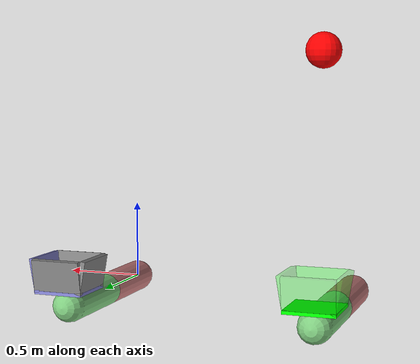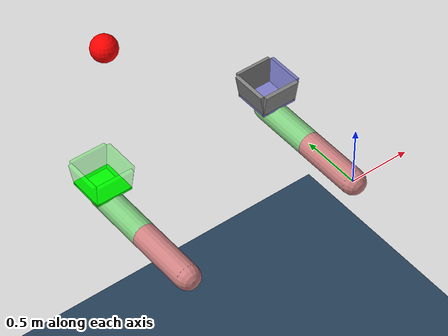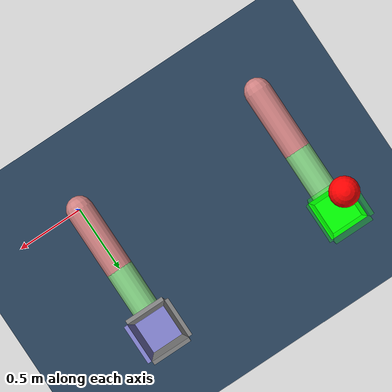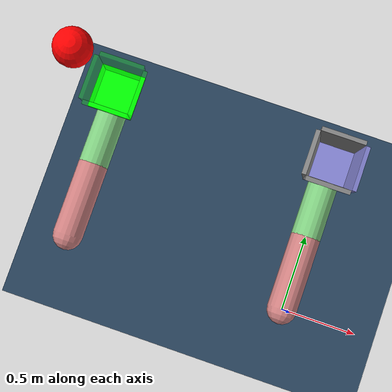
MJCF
<?xml version="1.0" encoding="utf-8"?>
<mujoco>
  <option timestep="0.01" integrator="RK4" gravity="0 0 -9.81"/>
  <compiler convexhull="false" angle="degree" autolimits="true"/>
  <default>
    <geom size=".1 .1 .1" type="box"/>
  </default>
  <worldbody>
    <light diffuse=".5 .5 .5" pos="0 0 3" dir="0 0 -1"/>
    <geom name="floor" pos="0 0 -2" size="5 5 1" type="plane" material="matplane"/>
    <camera name="overhead" pos="0 0 4"  target="ball" euler="0 0 0" />
    <camera name="front"    pos="4 0 0"  mode="trackcom" target="ball" />

    <body name="base" pos="0 0 0">
      <body name="upper_arm" pos="0 0 0"  gravcomp="1">
        <inertial pos="0 0 0" mass="0.1" diaginertia="1.66667e-10 1.66667e-10 1.66667e-10"/>
        <geom type="capsule" fromto="0 0 0 0 0.5 0" size="0.1" material="matshoulder"/>
        <joint name="shoulder_roll" type="hinge" axis="0 0 1" limited="true" range="-60 60"/>
        <joint name="shoulder_joint" type="hinge" axis="-1 0 0" limited="true" range="-60 10"/>
        <body name="lower_arm" pos="0 0.5 0"  gravcomp="1">
        <inertial pos="0 0 0" mass="0.1" diaginertia="1.66667e-10 1.66667e-10 1.66667e-10"/>
          <joint name="elbow_joint" type="hinge" axis="1 0 0" limited="true" range="0 90"/>
          <geom type="capsule" fromto="0 0 0 0 0.5 0" size="0.1" material="matelbow"/>
          <body name="hand" pos ="0 0.5 0.1" euler="90 0 0" gravcomp="1">

          <body name="palm" gravcomp="1">
            <inertial pos="0 0 0" mass="0.1" diaginertia="1.66667e-10 1.66667e-10 1.66667e-10"/>
            <geom type="box" size="0.15 0.01 0.15" material="matee"/>
          </body>

            <body name="backwall" pos="0 0.1 0.15" euler="100 0 0" gravcomp="1">
              <inertial pos="0 0 0" mass="0.001" diaginertia="1.66667e-10 1.66667e-10 1.66667e-10"/>
              <geom type="box" size="0.15 0.015 0.1" />
            </body>
            <body name="frontwall" pos="0 0.1 -0.15" euler="80 0 0" gravcomp="1">
              <inertial pos="0 0 0" mass="0.001" diaginertia="1.66667e-10 1.66667e-10 1.66667e-10"/>
              <geom type="box" size="0.15 0.015 0.1" />
            </body>
            <body name="leftwall" pos="-0.15 0.1 0" euler="90 10 90" gravcomp="1">
              <inertial pos="0 0 0" mass="0.001" diaginertia="1.66667e-10 1.66667e-10 1.66667e-10"/>
              <geom type="box" size="0.15 0.015 0.1"/>
            </body>
            <body name="rightwall" pos="0.15 0.1 0" euler="90 -10 90" gravcomp="1">
              <inertial pos="0 0 0" mass="0.001" diaginertia="1.66667e-10 1.66667e-10 1.66667e-10"/>
              <geom type="box" size="0.15 0.015 0.1" material="matee"/>
            </body>
          </body>
        </body>
      </body>
    </body>

    <body name="base_l" pos="-1.5 0 0">
      <body name="upper_arm_l" pos="0 0 0"  gravcomp="1">
        <inertial pos="0 0 0" mass="0.1" diaginertia="1.66667e-10 1.66667e-10 1.66667e-10"/>
        <geom type="capsule" fromto="0 0 0 0 0.5 0" size="0.1" material="matshoulder"/>
        <joint name="shoulder_roll_l" type="hinge" axis="0 0 1" limited="true" range="-60 60"/>
        <joint name="shoulder_joint_l" type="hinge" axis="-1 0 0" limited="true" range="-10 60"/>
        <body name="lower_arm_l" pos="0 0.5 0"  gravcomp="1">
        <inertial pos="0 0 0" mass="0.1" diaginertia="1.66667e-10 1.66667e-10 1.66667e-10"/>
          <joint name="elbow_joint_l" type="hinge" axis="1 0 0" limited="true" range="0 90"/>
          <geom type="capsule" fromto="0 0 0 0 0.5 0" size="0.1" material="matelbow"/>
          <body name="hand_l" pos ="0 0.5 0.1" euler="90 0 0" gravcomp="1">
            <body name="palm_l" gravcomp="1">
            <inertial pos="0 0 0" mass="0.1" diaginertia="1.66667e-10 1.66667e-10 1.66667e-10"/>
            <geom type="box" size="0.15 0.01 0.15" material="matpalm"/>
            </body>

            <body name="backwall_l" pos="0 0.1 0.15" euler="100 0 0" gravcomp="1">
              <inertial pos="0 0 0" mass="0.001" diaginertia="1.66667e-10 1.66667e-10 1.66667e-10"/>
              <geom type="box" size="0.15 0.015 0.1" material="matwall"/>
            </body>
            <body name="frontwall_l" pos="0 0.1 -0.15" euler="80 0 0" gravcomp="1">
              <inertial pos="0 0 0" mass="0.001" diaginertia="1.66667e-10 1.66667e-10 1.66667e-10"/>
              <geom type="box" size="0.15 0.015 0.1" material="matwall"/>
            </body>
            <body name="leftwall_l" pos="-0.15 0.1 0" euler="90 10 90" gravcomp="1">
              <inertial pos="0 0 0" mass="0.001" diaginertia="1.66667e-10 1.66667e-10 1.66667e-10"/>
              <geom type="box" size="0.15 0.015 0.1" material="matwall"/>
            </body>
            <body name="rightwall_l" pos="0.15 0.1 0" euler="90 -10 90" gravcomp="1">
              <inertial pos="0 0 0" mass="0.001" diaginertia="1.66667e-10 1.66667e-10 1.66667e-10"/>
              <geom type="box" size="0.15 0.015 0.1" material="matwall"/>
            </body>
          </body>
        </body>
      </body>
    </body>

    <body name="ball" pos ="-1.5 0.87 1.5">
      <inertial pos="0 0 0" mass="1" diaginertia="1e-5 1e-5 1e-5"/>
      <geom type="sphere" size="0.1" material="matball"/>
      <joint type="free"/>
    </body>

  </worldbody>

  <asset>
    <material name="matplane" texture="texplane"/>
    <material name="matbase"      rgba="0.5 0.5 0.5 1"/>
    <material name="matshoulder"  rgba="0.8 0.5 0.5 1"/>
    <material name="matelbow"     rgba="0.5 0.8 0.5 1"/>
    <material name="matee"        rgba="0.5 0.5 0.8 1"/>
    <material name="matball"      rgba="1 0 0 1" />
    <material name="matpalm"      rgba="0 1 0 1" />
    <material name="matwall"      rgba="0 1 0 0.3" />
    <texture name="texplane" type="2d" builtin="checker" rgb1="0.2 0.3 0.4" rgb2="0.1 0.2 0.3" width="32" height="32"/>
</asset>

  <actuator>
    <motor name="roll_acutator_l"     joint="shoulder_roll_l"   forcerange="-5 5" ctrlrange="-1 1"  gear="3"/>
    <motor name="shoulder_actuator_l" joint="shoulder_joint_l"  forcerange="-5 5" ctrlrange="-1 1"  gear="3"/>
    <motor name="elbow_actuator_l"    joint="elbow_joint_l"     forcerange="-5 5" ctrlrange="-1 1"  gear="3"/>
  </actuator>
  <sensor>
    <actuatorpos name="shoulder_actuator_pos_l" actuator="shoulder_actuator_l"/>
    <actuatorpos name="elbow_actuator_pos_l"    actuator="elbow_actuator_l"/>
    <actuatorpos name="roll_actuator_pos_l"     actuator="roll_acutator_l"/>
  </sensor>
</mujoco>
